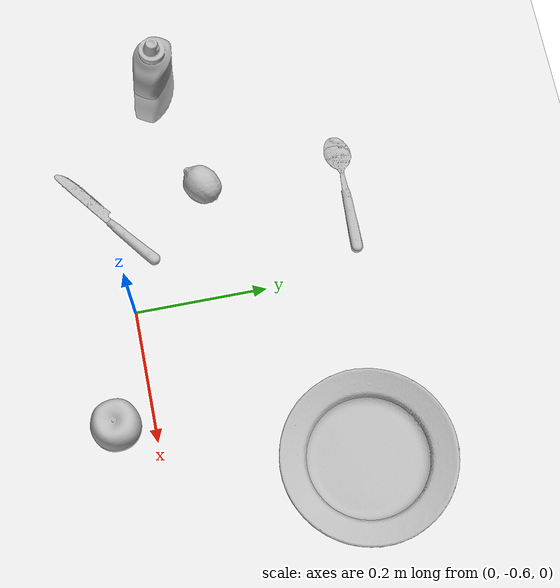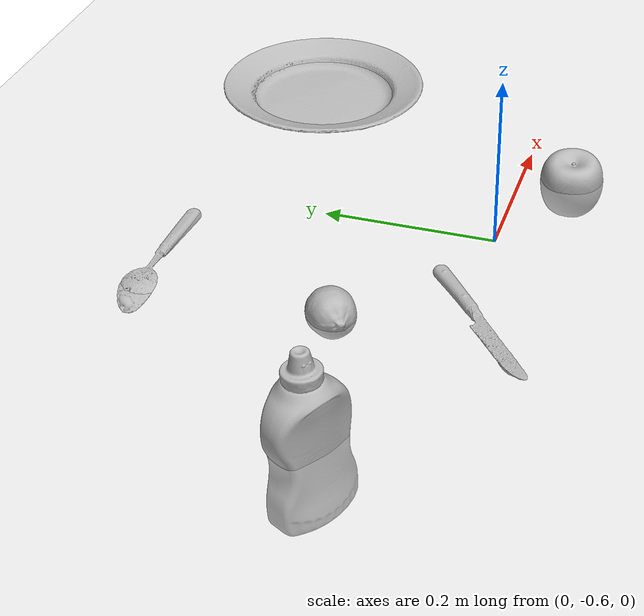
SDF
<sdf version="1.7">
 <world name="default">
  <light name="sun" type="directional">
   <pose>0 0 10 0 -0 0</pose>
   <diffuse>0.8 0.8 0.8 1</diffuse>
   <specular>0.2 0.2 0.2 1</specular>
   <attenuation>
    <range>1000</range>
    <constant>0.9</constant>
    <linear>0.01</linear>
    <quadratic>0.001</quadratic>
   </attenuation>
   <direction>-0.5 0.1 -0.9</direction>
   <spot><inner_angle>0</inner_angle><outer_angle>0</outer_angle><falloff>0</falloff></spot>
  </light>
  <model name="ground_plane">
   <static>1</static>
   <link name="link">
    <collision name="collision">
     <geometry><plane><normal>0 0 1</normal><size>100 100</size></plane></geometry>
     <surface>
      <contact><collide_bitmask>65535</collide_bitmask></contact>
      <friction><ode><mu>100</mu><mu2>50</mu2></ode></friction>
     </surface>
    </collision>
    <visual name="visual">
     <cast_shadows>0</cast_shadows>
     <geometry><plane><normal>0 0 1</normal><size>100 100</size></plane></geometry>
     <material>
      <script><uri>file://media/materials/scripts/gazebo.material</uri><name>Gazebo/Grey</name></script>
     </material>
    </visual>
   </link>
  </model>
  <gravity>0 0 -9.8</gravity>
  <magnetic_field>6e-06 2.3e-05 -4.2e-05</magnetic_field>
  <atmosphere type="adiabatic"/>
  <physics type="ode">
   <max_step_size>0.001</max_step_size>
   <real_time_factor>1</real_time_factor>
   <real_time_update_rate>1000</real_time_update_rate>
  </physics>
  <scene><ambient>0.4 0.4 0.4 1</ambient><background>0.7 0.7 0.7 1</background><shadows>1</shadows></scene>
  <spherical_coordinates>
   <surface_model>EARTH_WGS84</surface_model>
   <latitude_deg>0</latitude_deg>
   <longitude_deg>0</longitude_deg>
   <elevation>0</elevation>
   <heading_deg>0</heading_deg>
  </spherical_coordinates>
  <model name="031_spoon">
   <static>0</static>
   <link name="link">
    <inertial>
     <pose>-0.036858 -0.00381 0.008895 -0.472455 -1.5544 0.128689</pose>
     <mass>0.00768834</mass>
     <inertia>
      <ixx>1.90874e-05</ixx>
      <ixy>1.44189e-22</ixy>
      <ixz>1.89317e-22</ixz>
      <iyy>1.8747e-05</iyy>
      <iyz>6.84043e-21</iyz>
      <izz>6.66179e-07</izz>
     </inertia>
    </inertial>
    <collision name="collision">
     <geometry><mesh><uri>model:///031_spoon/031_spoon_250_collision.stl</uri></mesh></geometry>
    </collision>
    <visual name="visual">
     <geometry><mesh><uri>model:///031_spoon/textured.obj</uri></mesh></geometry>
     <material><script><uri>model:///031_spoon/031_spoon.material</uri><name>031_spoon</name></script></material>
    </visual>
   </link>
   <pose>-0.156386 -0.250602 -0.001196 -0.053804 0.000777 0.338743</pose>
  </model>
  <model name="014_lemon">
   <static>0</static>
   <link name="link">
    <inertial>
     <pose>-0.010808 0.020966 0.026215 -1.54673 0.631601 2.29445</pose>
     <mass>0.00976451</mass>
     <inertia>
      <ixx>3.47745e-06</ixx>
      <ixy>1.02643e-21</ixy>
      <ixz>-5.18891e-22</ixz>
      <iyy>3.46062e-06</iyy>
      <iyz>2.53092e-22</iyz>
      <izz>2.80338e-06</izz>
     </inertia>
    </inertial>
    <collision name="collision">
     <geometry><mesh><uri>model:///014_lemon/014_lemon_250_collision.stl</uri></mesh></geometry>
    </collision>
    <visual name="visual">
     <geometry><mesh><uri>model:///014_lemon/textured.obj</uri></mesh></geometry>
     <material><script><uri>model:///014_lemon/014_lemon.material</uri><name>014_lemon</name></script></material>
    </visual>
   </link>
   <pose>-0.183003 -0.466621 0.001883 -0.13257 0.054296 -0.081773</pose>
  </model>
  <model name="013_apple">
   <static>0</static>
   <link name="link">
    <inertial>
     <pose>0.00127 -0.003882 0.036366 0.173168 -0.051904 -1.65019</pose>
     <mass>0.0251956</mass>
     <inertia>
      <ixx>1.59181e-05</ixx>
      <ixy>-1.00237e-21</ixy>
      <ixz>1.85858e-22</ixz>
      <iyy>1.56739e-05</iyy>
      <iyz>2.51182e-22</iyz>
      <izz>1.53079e-05</izz>
     </inertia>
    </inertial>
    <collision name="collision">
     <geometry><mesh><uri>model:///013_apple/013_apple_250_collision.stl</uri></mesh></geometry>
    </collision>
    <visual name="visual">
     <geometry><mesh><uri>model:///013_apple/textured.obj</uri></mesh></geometry>
     <material><script><uri>model:///013_apple/013_apple.material</uri><name>013_apple</name></script></material>
    </visual>
   </link>
   <pose>0.161601 -0.657018 -0.000121 0.004848 -0.015054 -0.022554</pose>
  </model>
  <model name="032_knife">
   <static>0</static>
   <link name="link">
    <inertial>
     <pose>-0.008824 -0.028038 0.003787 1.8387 1.38415 -1.31122</pose>
     <mass>0.00397387</mass>
     <inertia>
      <ixx>1.25982e-05</ixx>
      <ixy>-1.20666e-21</ixy>
      <ixz>4.11694e-22</ixz>
      <iyy>1.25552e-05</iyy>
      <iyz>-4.93093e-22</iyz>
      <izz>1.34876e-07</izz>
     </inertia>
    </inertial>
    <collision name="collision">
     <geometry><mesh><uri>model:///032_knife/032_knife_250_collision.stl</uri></mesh></geometry>
    </collision>
    <visual name="visual">
     <geometry><mesh><uri>model:///032_knife/textured.obj</uri></mesh></geometry>
     <material><script><uri>model:///032_knife/032_knife.material</uri><name>032_knife</name></script></material>
    </visual>
   </link>
   <pose>-0.169866 -0.628398 0.003224 0.01032 0.053249 0.659989</pose>
  </model>
  <model name="006_mustard_bottle">
   <static>0</static>
   <link name="link">
    <inertial>
     <pose>-0.015066 -0.023093 0.076577 3.13969 -0.006375 -1.97008</pose>
     <mass>0.0698708</mass>
     <inertia>
      <ixx>0.00019466</ixx>
      <ixy>1.54795e-20</ixy>
      <ixz>-3.39626e-21</ixz>
      <iyy>0.000169778</iyy>
      <iyz>1.46893e-21</iyz>
      <izz>5.25911e-05</izz>
     </inertia>
    </inertial>
    <collision name="collision">
     <geometry><mesh><uri>model:///006_mustard_bottle/006_mustard_bottle_250_collision.stl</uri></mesh></geometry>
    </collision>
    <visual name="visual">
     <geometry><mesh><uri>model:///006_mustard_bottle/textured.obj</uri></mesh></geometry>
     <material>
      <script>
       <uri>model:///006_mustard_bottle/006_mustard_bottle.material</uri>
       <name>006_mustard_bottle</name>
      </script>
     </material>
    </visual>
   </link>
   <pose>-0.379998 -0.507969 0.002611 -0.042986 -0.010807 -0.090762</pose>
  </model>
  <model name="029_plate">
   <static>0</static>
   <link name="link">
    <inertial>
     <pose>-0.011085 0.00039 0.012119 0.34802 -1.56622 -2.32393</pose>
     <mass>0.0978328</mass>
     <inertia>
      <ixx>0.000631176</ixx>
      <ixy>3.87849e-20</ixy>
      <ixz>1.27428e-19</ixz>
      <iyy>0.000321347</iyy>
      <iyz>-2.06186e-20</iyz>
      <izz>0.000319826</izz>
     </inertia>
    </inertial>
    <collision name="collision">
     <geometry><mesh><uri>model:///029_plate/029_plate_250_collision.stl</uri></mesh></geometry>
    </collision>
    <visual name="visual">
     <geometry><mesh><uri>model:///029_plate/textured.obj</uri></mesh></geometry>
     <material><script><uri>model:///029_plate/029_plate.material</uri><name>029_plate</name></script></material>
    </visual>
   </link>
   <pose>0.27639 -0.291764 0.003139 -0.000408 0.002003 -0.000572</pose>
  </model>
 </world>
</sdf>
